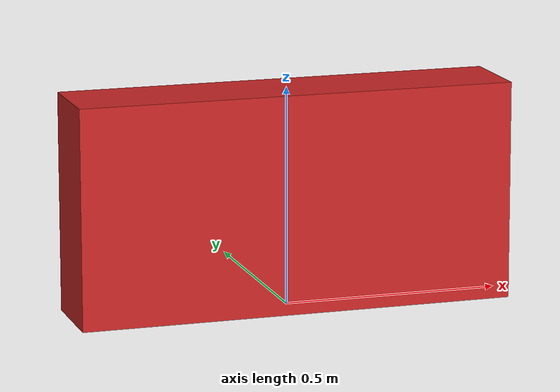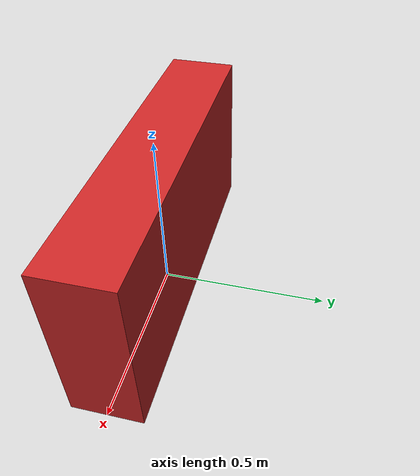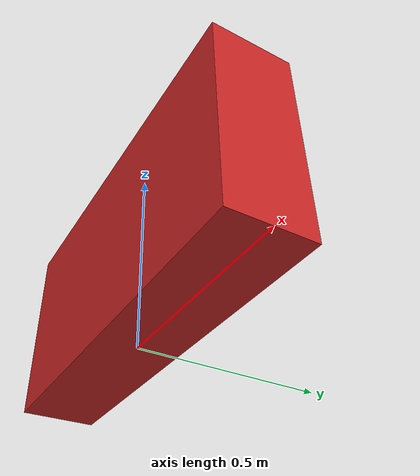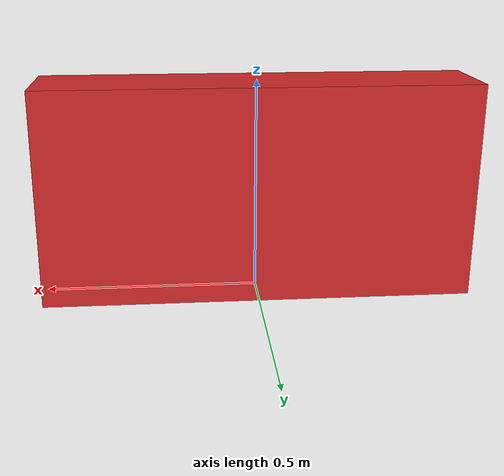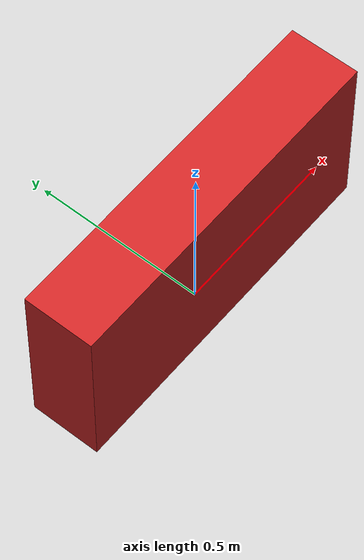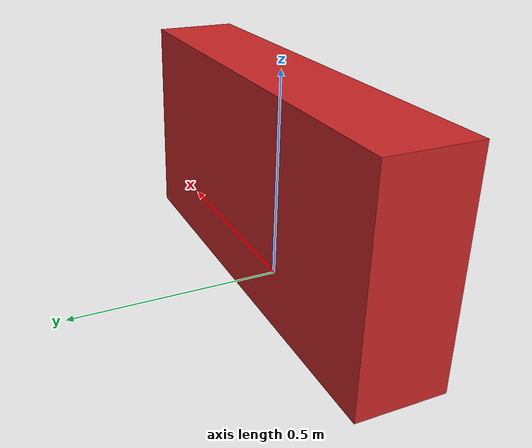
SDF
<sdf version="1.5">
  <model name="Box_Pinned_To_World">
    <!-- Specifies X_WD, which is the model frame, D, expressed in the world
    frame, W. -->
    <pose frame="">0 0 0 0 0 0</pose>
    <link name="box">
      <!-- Specifies X_DL, which is the link frame, L, expressed in the model
      frame, D. -->
      <pose frame="">0 0 0 0 0 0</pose>
      <inertial>
        <!-- Specifies X_IL, the inertial frame, I, expressed in the link frame,
        L. -->
        <pose frame="">0 0 0 0 0 0</pose>
        <mass>1.0</mass>
        <inertia>
          <ixx>0</ixx>
          <ixy>0</ixy>
          <ixz>0</ixz>
          <iyy>0</iyy>
          <iyz>0</iyz>
          <izz>0</izz>
        </inertia>
      </inertial>
      <visual name="base_visual">
        <pose frame="">0 0 0.25 0 0 0</pose>
        <geometry>
          <box>
            <size>1 0.2 0.5</size>
          </box>
        </geometry>
        <material>
          <script>
            <uri>file://media/materials/scripts/gazebo.material</uri>
            <name>Gazebo/Red</name>
          </script>
        </material>
      </visual>
    </link>
    <!-- The following joint pins the box link to the world. -->
    <joint name="fix_to_world_joint" type="fixed">
      <parent>world</parent>
      <child>box</child>
    </joint>
  </model>
</sdf>
